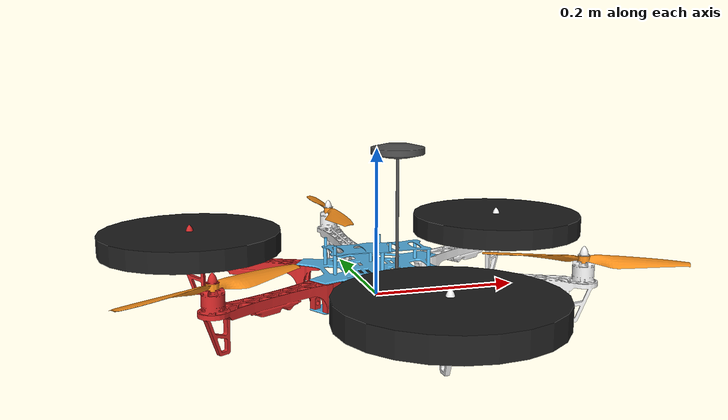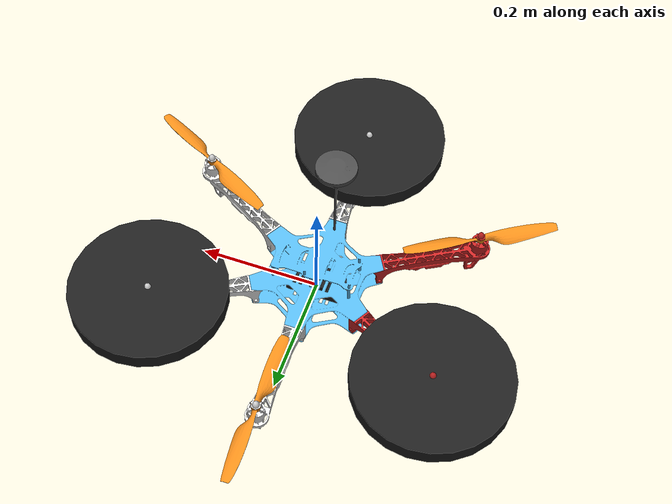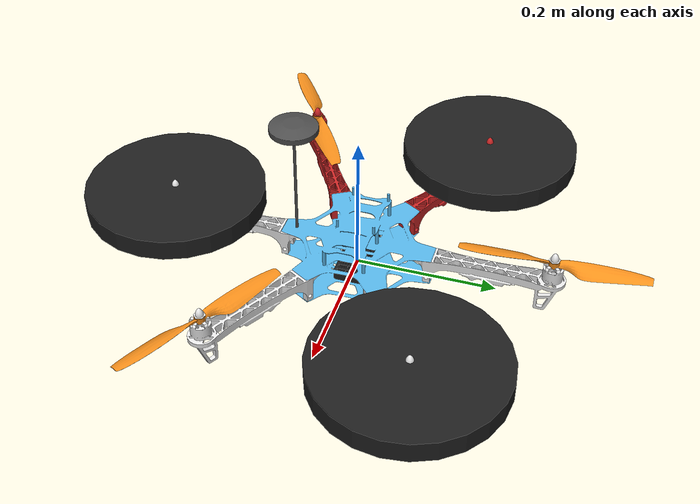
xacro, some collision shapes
<?xml version="1.0"?>

<robot name="F550" xmlns:xacro="http://www.ros.org/wiki/xacro">

  <!-- F550 base properties -->
  <!-- common properties -->
  <xacro:property name="namespace" value="" />
  <xacro:property name="rotor_velocity_slowdown_sim" value="10" />

  <!-- base_link properties -->
  <xacro:property name="base_mass" value="1.50" />
  <xacro:property name="base_mesh_file" value="base_link.STL"/>
  <xacro:property name="base_mesh_scale" value="1 1 1"/>
  <xacro:property name="base_color" value="Black" />
  <xacro:property name="collision_length" value="0.13" />
  <xacro:property name="collision_radius" value="0.295" />
  <xacro:property name="base_inertia"
  >
    <!-- units: kg･m^2 -->
      <inertia
        ixx="0.00012113"
        ixy="-2.4623E-08"
        ixz="1.6419E-06"
        iyy="0.00013125"
        iyz="6.0617E-07"
        izz="1.8253E-05" />
  </xacro:property>
  <xacro:property name="collision_origin"
  >
    <origin xyz="0 0 0.03" rpy="0 0 0" />
  </xacro:property>

  <!-- rotors properties -->
  <xacro:property name="wing_parent" value="base_link" />
  <xacro:property name="motor_constant" value="8.54858e-06" />
  <xacro:property name="moment_constant" value="0.06" />
  <xacro:property name="mass_rotor" value="0.0091837" />
  <xacro:property name="mass_wing" value="0.11819" />
  <xacro:property name="rotor_collision_radius" value="0.13" />
  <xacro:property name="rotor_collision_length" value="0.03" />
  <xacro:property name="time_constant_up" value="0.0125" />
  <xacro:property name="time_constant_down" value="0.025" />
  <xacro:property name="max_rot_velocity" value="1500" />
  <xacro:property name="rotor_drag_coefficient" value="0.000806428" />
  <xacro:property name="rolling_moment_coefficient" value="1e-06" />
  <xacro:property name="prop_mesh_scale" value="1 1 1" />
  <xacro:property name="ccw_prop_mesh_file" value="ccw_prop.STL" />
  <xacro:property name="cw_prop_mesh_file" value="cw_prop.STL" />
  <xacro:property name="wing_mesh_scale" value="1 1 1" />
  <xacro:property name="wing_mesh_file" value="wing.STL"/>
  <xacro:property name="wing_inertia_origin"
  >
    <origin
      xyz="0.033233 0.00054387 0.012567"
      rpy="0 0 0" />
  </xacro:property>
  <xacro:property name="wing_inertia"
  >
    <inertia
      ixx="2.1906E-05"
      ixy="7.962E-07"
      ixz="-6.9968E-05"
      iyy="0.0002878"
      iyz="2.0567E-07"
      izz="0.0002659" />
  </xacro:property>
  <xacro:property name="rotor_origin"
  >
    <origin
      xyz="0.0865 0.0005 0.033"
      rpy="0 0 0" />
  </xacro:property>
  <xacro:property name="cw_rotor_inertia"
  >
    <inertia
        ixx="3.009E-07"
        ixy="1.5042E-07"
        ixz="0"
        iyy="3.4024E-05"
        iyz="0"
        izz="3.4239E-05" />
  </xacro:property>
  <xacro:property name="ccw_rotor_inertia"
  >
    <inertia
        ixx="3.00752E-07"
        ixy="-1.4455E-07"
        ixz="0"
        iyy="3.41061E-05"
        iyz="0"
        izz="3.43204E-05" />
  </xacro:property>
  <xacro:property name="rotor_inertia_origin"
  >
  <origin
        xyz="0 0 0.0078525"
        rpy="0 0 0" />
  </xacro:property>

  <!-- Include hexarotor base -->
  <xacro:include filename="hexa_base.xacro" />

  <!-- base_link -->
  <xacro:hexa_base
    namespace="${namespace}"
    mass="${base_mass}"
    mesh_file="${base_mesh_file}"
    mesh_scale="${base_mesh_scale}"
    rotor_velocity_slowdown_sim="${rotor_velocity_slowdown_sim}"
    color="${base_color}"
    collision_length="${collision_length}"
    collision_radius="${collision_radius}"
  >
    <xacro:insert_block name="base_inertia" />
    <xacro:insert_block name="collision_origin" />
  </xacro:hexa_base>

  <!-- rotors -->
  <!-- 1st rotor -->
  <xacro:vertical_rotor
    motor_number="0"
    namespace="${namespace}"
    parent="${wing_parent}"
    wing_mesh_file="${wing_mesh_file}"
    wing_mesh_scale="${wing_mesh_scale}"
    mass_wing="${mass_wing}"
    wing_color="White"
    mass_rotor="${mass_rotor}"
    rotor_mesh_file="${cw_prop_mesh_file}"
    rotor_mesh_scale="${prop_mesh_scale}"
    rotor_collision_length="${rotor_collision_length}"
    rotor_collision_radius="${rotor_collision_radius}"
    rotor_color="Black"
    suffix="right"
    direction="cw"
    time_constant_up="${time_constant_up}"
    time_constant_down="${time_constant_down}"
    max_rot_velocity="${max_rot_velocity}"
    motor_constant="${motor_constant}"
    moment_constant="${moment_constant}"
    rotor_drag_coefficient="${rotor_drag_coefficient}"
    rolling_moment_coefficient="${rolling_moment_coefficient}"
    rotor_velocity_slowdown_sim="${rotor_velocity_slowdown_sim}"
  >
    <!-- wing_origin -->
    <origin
      xyz="0 -0.1875 0.026"
      rpy="0 0 ${-pi / 2}" />
    <!-- wing_inertia_origin -->
    <xacro:insert_block name="wing_inertia_origin" />
    <!-- wing_inertia -->
    <xacro:insert_block name="wing_inertia" />
    <!-- rotor_origin -->
    <xacro:insert_block name="rotor_origin" />
    <!-- rotor_inertia_origin -->
    <xacro:insert_block name="rotor_inertia_origin" />
    <!-- rotor_inertia -->
    <xacro:insert_block name="cw_rotor_inertia" />
  </xacro:vertical_rotor>

  <!-- 2nd rotor -->
  <xacro:vertical_rotor
    motor_number="1"
    namespace="${namespace}"
    parent="${wing_parent}"
    wing_mesh_file="${wing_mesh_file}"
    wing_mesh_scale="${wing_mesh_scale}"
    mass_wing="${mass_wing}"
    wing_color="White"
    mass_rotor="${mass_rotor}"
    rotor_mesh_file="${ccw_prop_mesh_file}"
    rotor_mesh_scale="${prop_mesh_scale}"
    rotor_collision_length="${rotor_collision_length}"
    rotor_collision_radius="${rotor_collision_radius}"
    rotor_color="Orange"
    suffix="left"
    direction="ccw"
    time_constant_up="${time_constant_up}"
    time_constant_down="${time_constant_down}"
    max_rot_velocity="${max_rot_velocity}"
    motor_constant="${motor_constant}"
    moment_constant="${moment_constant}"
    rotor_drag_coefficient="${rotor_drag_coefficient}"
    rolling_moment_coefficient="${rolling_moment_coefficient}"
    rotor_velocity_slowdown_sim="${rotor_velocity_slowdown_sim}"
  >
    <!-- wing_origin -->
    <origin
      xyz="0 0.1875 0.026"
      rpy="0 0 ${pi / 2}" />
    <!-- wing_inertia_origin -->
    <xacro:insert_block name="wing_inertia_origin" />
    <!-- wing_inertia -->
    <xacro:insert_block name="wing_inertia" />
    <!-- rotor_origin -->
    <xacro:insert_block name="rotor_origin" />
    <!-- rotor_inertia_origin -->
    <xacro:insert_block name="rotor_inertia_origin" />
    <!-- rotor_inertia -->
    <xacro:insert_block name="ccw_rotor_inertia" />
  </xacro:vertical_rotor>

  <!-- 3rd rotor -->
  <xacro:vertical_rotor
    motor_number="2"
    namespace="${namespace}"
    parent="${wing_parent}"
    wing_mesh_file="${wing_mesh_file}"
    wing_mesh_scale="${wing_mesh_scale}"
    mass_wing="${mass_wing}"
    wing_color="White"
    mass_rotor="${mass_rotor}"
    rotor_mesh_file="${cw_prop_mesh_file}"
    rotor_mesh_scale="${prop_mesh_scale}"
    rotor_collision_length="${rotor_collision_length}"
    rotor_collision_radius="${rotor_collision_radius}"
    rotor_color="Black"
    suffix="left_front"
    direction="cw"
    time_constant_up="${time_constant_up}"
    time_constant_down="${time_constant_down}"
    max_rot_velocity="${max_rot_velocity}"
    motor_constant="${motor_constant}"
    moment_constant="${moment_constant}"
    rotor_drag_coefficient="${rotor_drag_coefficient}"
    rolling_moment_coefficient="${rolling_moment_coefficient}"
    rotor_velocity_slowdown_sim="${rotor_velocity_slowdown_sim}"
  >
    <!-- wing_origin -->
    <origin
      xyz="${0.1875 * cos(pi/6)} ${0.1875 * sin(pi/6)} 0.026"
      rpy="0 0 ${pi/6}" />
    <!-- wing_inertia_origin -->
    <xacro:insert_block name="wing_inertia_origin" />
    <!-- wing_inertia -->
    <xacro:insert_block name="wing_inertia" />
    <!-- rotor_origin -->
    <xacro:insert_block name="rotor_origin" />
    <!-- rotor_inertia_origin -->
    <xacro:insert_block name="rotor_inertia_origin" />
    <!-- rotor_inertia -->
    <xacro:insert_block name="cw_rotor_inertia" />
  </xacro:vertical_rotor>

  <!-- 4th rotor -->
  <xacro:vertical_rotor
    motor_number="3"
    namespace="${namespace}"
    parent="${wing_parent}"
    wing_mesh_file="${wing_mesh_file}"
    wing_mesh_scale="${wing_mesh_scale}"
    mass_wing="${mass_wing}"
    wing_color="Red"
    mass_rotor="${mass_rotor}"
    rotor_mesh_file="${ccw_prop_mesh_file}"
    rotor_mesh_scale="${prop_mesh_scale}"
    rotor_collision_length="${rotor_collision_length}"
    rotor_collision_radius="${rotor_collision_radius}"
    rotor_color="Orange"
    suffix="right_rear"
    direction="ccw"
    time_constant_up="${time_constant_up}"
    time_constant_down="${time_constant_down}"
    max_rot_velocity="${max_rot_velocity}"
    motor_constant="${motor_constant}"
    moment_constant="${moment_constant}"
    rotor_drag_coefficient="${rotor_drag_coefficient}"
    rolling_moment_coefficient="${rolling_moment_coefficient}"
    rotor_velocity_slowdown_sim="${rotor_velocity_slowdown_sim}"
  >
    <!-- wing_origin -->
    <origin
      xyz="${0.1875 * cos(-5*pi/6)} ${0.1875 * sin(-5*pi/6)} 0.026"
      rpy="0 0 ${-5*pi/6}" />
    <!-- wing_inertia_origin -->
    <xacro:insert_block name="wing_inertia_origin" />
    <!-- wing_inertia -->
    <xacro:insert_block name="wing_inertia" />
    <!-- rotor_origin -->
    <xacro:insert_block name="rotor_origin" />
    <!-- rotor_inertia_origin -->
    <xacro:insert_block name="rotor_inertia_origin" />
    <!-- rotor_inertia -->
    <xacro:insert_block name="ccw_rotor_inertia" />
  </xacro:vertical_rotor>

  <!-- 5th rotor -->
  <xacro:vertical_rotor
    motor_number="4"
    namespace="${namespace}"
    parent="${wing_parent}"
    wing_mesh_file="${wing_mesh_file}"
    wing_mesh_scale="${wing_mesh_scale}"
    mass_wing="${mass_wing}"
    wing_color="White"
    mass_rotor="${mass_rotor}"
    rotor_mesh_file="${ccw_prop_mesh_file}"
    rotor_mesh_scale="${prop_mesh_scale}"
    rotor_collision_length="${rotor_collision_length}"
    rotor_collision_radius="${rotor_collision_radius}"
    rotor_color="Orange"
    suffix="right_front"
    direction="ccw"
    time_constant_up="${time_constant_up}"
    time_constant_down="${time_constant_down}"
    max_rot_velocity="${max_rot_velocity}"
    motor_constant="${motor_constant}"
    moment_constant="${moment_constant}"
    rotor_drag_coefficient="${rotor_drag_coefficient}"
    rolling_moment_coefficient="${rolling_moment_coefficient}"
    rotor_velocity_slowdown_sim="${rotor_velocity_slowdown_sim}"
  >
    <!-- wing_origin -->
    <origin
      xyz="${0.1875 * cos(-pi/6)} ${0.1875 * sin(-pi/6)} 0.026"
      rpy="0 0 ${-pi/6}" />
    <!-- wing_inertia_origin -->
    <xacro:insert_block name="wing_inertia_origin" />
    <!-- wing_inertia -->
    <xacro:insert_block name="wing_inertia" />
    <!-- rotor_origin -->
    <xacro:insert_block name="rotor_origin" />
    <!-- rotor_inertia_origin -->
    <xacro:insert_block name="rotor_inertia_origin" />
    <!-- rotor_inertia -->
    <xacro:insert_block name="ccw_rotor_inertia" />
  </xacro:vertical_rotor>

  <!-- 6th rotor -->
  <xacro:vertical_rotor
    motor_number="5"
    namespace="${namespace}"
    parent="${wing_parent}"
    wing_mesh_file="${wing_mesh_file}"
    wing_mesh_scale="${wing_mesh_scale}"
    mass_wing="${mass_wing}"
    wing_color="Red"
    mass_rotor="${mass_rotor}"
    rotor_mesh_file="${cw_prop_mesh_file}"
    rotor_mesh_scale="${prop_mesh_scale}"
    rotor_collision_length="${rotor_collision_length}"
    rotor_collision_radius="${rotor_collision_radius}"
    rotor_color="Black"
    suffix="left_rear"
    direction="cw"
    time_constant_up="${time_constant_up}"
    time_constant_down="${time_constant_down}"
    max_rot_velocity="${max_rot_velocity}"
    motor_constant="${motor_constant}"
    moment_constant="${moment_constant}"
    rotor_drag_coefficient="${rotor_drag_coefficient}"
    rolling_moment_coefficient="${rolling_moment_coefficient}"
    rotor_velocity_slowdown_sim="${rotor_velocity_slowdown_sim}"
  >
    <!-- wing_origin -->
    <origin
      xyz="${0.1875 * cos(5*pi/6)} ${0.1875 * sin(5*pi/6)} 0.026"
      rpy="0 0 ${5*pi/6}" />
    <!-- wing_inertia_origin -->
    <xacro:insert_block name="wing_inertia_origin" />
    <!-- wing_inertia -->
    <xacro:insert_block name="wing_inertia" />
    <!-- rotor_origin -->
    <xacro:insert_block name="rotor_origin" />
    <!-- rotor_inertia_origin -->
    <xacro:insert_block name="rotor_inertia_origin" />
    <!-- rotor_inertia -->
    <xacro:insert_block name="cw_rotor_inertia" />
  </xacro:vertical_rotor>

  <!-- accessories -->
  <!-- FCU -->
  <xacro:accessory
    name="pixhawk"
    mass="0.074008"
    mesh_file="pixhawk.STL"
    mesh_scale="1 1 1"
    color="FlatBlack"
    parent="base_link"
  >
    <!-- ogigin -->
    <origin
      xyz="0 0 0"
      rpy="0 0 0" />
    <!-- inertial origin -->
    <origin
      xyz="-0.0024647 9.4432E-05 0.011865"
      rpy="0 0 0" />
    <!-- inertia -->
    <inertia
      ixx="3.8198E-06"
      ixy="-6.11E-09"
      ixz="2.3562E-07"
      iyy="3.8099E-06"
      iyz="7.5702E-08"
      izz="4.7645E-08" />
    <!-- axis -->
    <axis
      xyz="0 0 0" />
  </xacro:accessory>

  <!-- GPS -->
  <xacro:accessory
    name="here_gps"
    mass="0.045664"
    mesh_file="here_gps.STL"
    mesh_scale="1 1 1"
    color="DarkGrey"
    parent="base_link"
  >
    <!-- ogigin -->
    <origin
      xyz="0 -0.09 0.20"
      rpy="0 0 0" />
    <!-- inertial origin -->
    <origin
      xyz="-6.68E-05 -0.0084082 1.31210000000051E-06"
      rpy="0 0 0" />
    <!-- inertia -->
    <inertia
      ixx="1.18897973921917E-05"
      ixy="1.90905250559444E-08"
      ixz="-4.16447287511186E-11"
      iyy="2.23807703040404E-05"
      iyz="2.02155100330627E-11"
      izz="1.19471291213534E-05" />
    <!-- axis -->
    <axis
      xyz="0 0 0" />
  </xacro:accessory>

  <!-- GPS Holder -->
  <!-- link -->
  <link name="gps_holder">
    <visual>
      <geometry>
        <cylinder radius="0.002" length="0.165" />
      </geometry>
    </visual>
  </link>
  <gazebo reference="gps_holder">
    <material>Gazebo/DarkGrey</material>
  </gazebo>

  <!-- joint -->
  <joint name="gps_holder_fix" type="fixed">
    <origin
      xyz="0 -0.09 0.122"
      rpy="0 0 0" />
    <parent link="base_link"/>
    <child link="gps_holder"/>
  </joint>
</robot>

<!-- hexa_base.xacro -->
<robot xmlns:xacro="http://www.ros.org/wiki/xacro">

  <!-- multi rotor base macro -->
  <xacro:macro name="hexa_base"
               params="mass mesh_file mesh_scale namespace
                       collision_length collision_radius
                       rotor_velocity_slowdown_sim color
                       *inertia *collision_origin">

    <link name="base_link"></link>
    <joint name="base_joint" type="fixed">
      <origin xyz="0 0 0" rpy="0 0 0" />
      <parent link="base_link" />
      <child link="base_link_inertia" />
    </joint>

    <!-- base_link -->
    <link name="base_link_inertia">
      <inertial>
        <mass value="${mass}" />  <!-- [kg] -->
        <origin xyz="0 0 0" />
        <xacro:insert_block name="inertia" />
      </inertial>
      <visual>
        <origin xyz="0 0 0" rpy="0 0 0" />
        <geometry>
          <mesh filename="model://F550/meshes/${mesh_file}"
            scale="${mesh_scale}"/>
        </geometry>
      </visual>
      <collision>
        <xacro:insert_block name="collision_origin"/>
        <geometry>
          <cylinder length="${collision_length}" radius="${collision_radius}" />
        </geometry>
      </collision>
    </link>

    <gazebo>
      <plugin filename="libgazebo_multirotor_base_plugin.so" name="rosbag">
        <robotNamespace>${namespace}</robotNamespace>
        <linkName>base_link</linkName>
        <rotorVelocitySlowdownSim>${rotor_velocity_slowdown_sim}</rotorVelocitySlowdownSim>
      </plugin>
    </gazebo>
    <gazebo reference="base_link">
      <material>Gazebo/${color}</material>
      <collision name='base_link_inertia_collision'>
        <surface>
          <contact>
            <ode>
              <min_depth>0.001</min_depth>
              <max_vel>0.0</max_vel>
            </ode>
          </contact>
          <friction>
            <ode/>
          </friction>
        </surface>
      </collision>
    </gazebo>
  </xacro:macro>

  <!-- rotor link and joint -->
  <xacro:macro name="vertical_rotor"
               params="motor_number namespace
                       parent wing_mesh_file wing_mesh_scale
                       mass_wing wing_color
                       mass_rotor rotor_mesh_file rotor_mesh_scale
                       rotor_collision_radius rotor_collision_length
                       rotor_color suffix direction
                       time_constant_up time_constant_down
                       max_rot_velocity motor_constant moment_constant
                       rotor_drag_coefficient rolling_moment_coefficient
                       rotor_velocity_slowdown_sim
                       *wing_origin *wing_inertia_origin *wing_inertia
                       *rotor_origin *rotor_inertia_origin *rotor_inertia">
    <!-- wing joint -->
    <joint name="wing_${motor_number}_joint" type="fixed">
      <xacro:insert_block name="wing_origin" />
      <axis xyz="0 0 0" />
      <parent link="${parent}" />
      <child link="wing_${motor_number}" />
    </joint>

    <!-- wing link -->
    <link name="wing_${motor_number}">
      <inertial>
        <xacro:insert_block name="wing_inertia_origin" />
        <mass value="${mass_wing}" />
        <xacro:insert_block name="wing_inertia" />
      </inertial>
      <visual>
        <geometry>
          <mesh filename="model://F550/meshes/${wing_mesh_file}"
            scale="${wing_mesh_scale}"/>
        </geometry>
      </visual>
    </link>
    <gazebo reference="wing_${motor_number}">
      <material>Gazebo/${wing_color}</material>
    </gazebo>

    <!-- rotor joint -->
    <joint name="rotor_${motor_number}_joint" type="continuous">
      <xacro:insert_block name="rotor_origin" />
      <axis xyz="0 0 1" />
      <parent link="wing_${motor_number}" />
      <child link="rotor_${motor_number}" />
    </joint>

    <!-- rotor link -->
    <link name="rotor_${motor_number}">
      <inertial>
        <xacro:insert_block name="rotor_inertia_origin" />
        <mass value="${mass_rotor}"/>
        <xacro:insert_block name="rotor_inertia"/>
      </inertial>
      <visual>
        <geometry>
          <mesh filename="model://F550/meshes/${rotor_mesh_file}"
            scale="${rotor_mesh_scale}"/>
        </geometry>
      </visual>
      <collision>
        <geometry>
          <cylinder length="${rotor_collision_length}" radius="${rotor_collision_radius}" />
        </geometry>
      </collision>
    </link>
    <gazebo>
      <plugin name="${suffix}_motor_model" filename="libgazebo_motor_model.so">
        <robotNamespace>${namespace}</robotNamespace>
        <jointName>rotor_${motor_number}_joint</jointName>
        <linkName>rotor_${motor_number}</linkName>
        <turningDirection>${direction}</turningDirection>
        <timeConstantUp>${time_constant_up}</timeConstantUp>
        <timeConstantDown>${time_constant_down}</timeConstantDown>
        <maxRotVelocity>${max_rot_velocity}</maxRotVelocity>
        <motorConstant>${motor_constant}</motorConstant>
        <momentConstant>${moment_constant}</momentConstant>
        <commandSubTopic>/gazebo/command/motor_speed</commandSubTopic>
        <motorNumber>${motor_number}</motorNumber>
        <rotorDragCoefficient>${rotor_drag_coefficient}</rotorDragCoefficient>
        <rollingMomentCoefficient>${rolling_moment_coefficient}</rollingMomentCoefficient>
        <motorSpeedPubTopic>/motor_speed/${motor_number}</motorSpeedPubTopic>
        <rotorVelocitySlowdownSim>${rotor_velocity_slowdown_sim}</rotorVelocitySlowdownSim>
      </plugin>
    </gazebo>
    <gazebo reference="rotor_${motor_number}">
      <material>Gazebo/${rotor_color}</material>
    </gazebo>
  </xacro:macro>

  <!-- accessory macro -->
  <xacro:macro name="accessory"
               params="name mass mesh_file mesh_scale color parent
                       *origin *inertia_origin *inertia *axis">
    <!-- link -->
    <link name="${name}">
      <inertial>
        <xacro:insert_block name="inertia_origin" />
        <mass value="${mass}" />
        <xacro:insert_block name="inertia" />
      </inertial>
      <visual>
        <geometry>
          <mesh filename="model://F550/meshes/${mesh_file}"
            scale="${mesh_scale}" />
        </geometry>
      </visual>
    </link>
    <gazebo reference="${name}">
      <material>Gazebo/${color}</material>
    </gazebo>

    <!-- joint -->
    <joint name="${name}_fix" type="fixed">
      <xacro:insert_block name="origin" />
      <parent link="${parent}"/>
      <child link="${name}"/>
      <xacro:insert_block name="axis" />
    </joint>

  </xacro:macro>

</robot>
